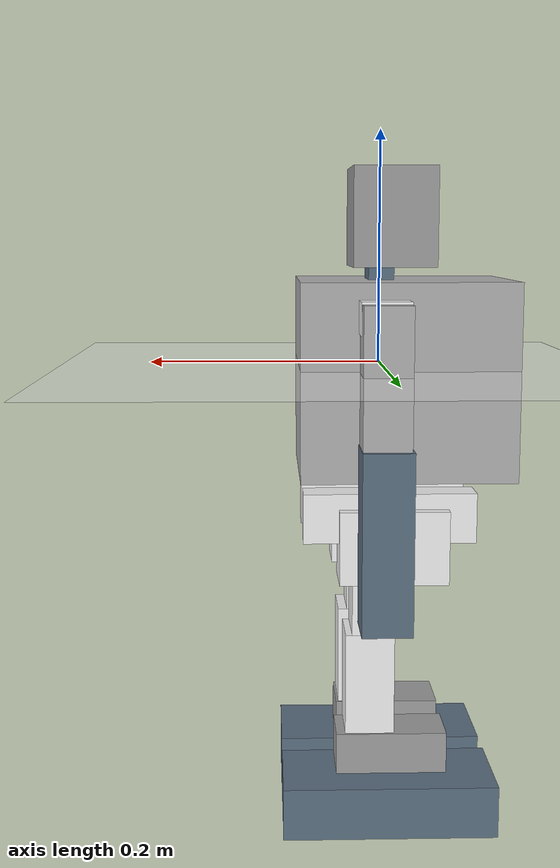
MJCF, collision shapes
<mujoco model="bez2 feetonly flat terrain scene">
  <include file="bez2_mjx_full_collision.xml"/>
    <compiler meshdir="meshes/" angle="radian"  assetdir="../assets/"/>

  <statistic center="0 0 0.1" extent="0.8" meansize="0.04"/>

  <visual>
    <headlight diffuse=".8 .8 .8" ambient=".2 .2 .2" specular="1 1 1"/>
    <rgba force="1 0 0 1"/>
    <global azimuth="120" elevation="-20"/>
    <map force="0.01"/>
    <scale forcewidth="0.3" contactwidth="0.5" contactheight="0.2"/>
    <quality shadowsize="8192"/>
  </visual>

  <asset>
    <texture type="skybox" builtin="gradient" rgb1="1 1 1" rgb2="1 1 1" width="800" height="800"/>
    <texture type="2d" name="groundplane" builtin="checker" mark="edge" rgb1="1 1 1" rgb2="1 1 1" markrgb="0 0 0"
      width="300" height="300"/>
    <material name="groundplane" texture="groundplane" texuniform="true" texrepeat="5 5" reflectance="0"/>
  </asset>

  <worldbody>
    <geom name="floor" size="0 0 0.01" type="plane" material="groundplane" contype="1" conaffinity="0" priority="1"
      friction="0.6" condim="3"/>
  </worldbody>

  <include file="sensor.xml"/>

  <keyframe>
      <key name="home"
      qpos="
        0.01006381 -0.00524273  0.3554218   0.99986568  0.00176925  0.01470567
 -0.0070161  -0.02879865  0.06594161  0.88049179 -1.53157813  0.6816981
 -0.07176462 -0.01780979  0.05104029  0.86242893 -1.540901    0.70639566
 -0.05184008

    "
    ctrl="

   -0.02879865  0.06594161  0.88049179 -1.53157813  0.6816981
 -0.07176462 -0.01780979  0.05104029  0.86242893 -1.540901    0.70639566
 -0.05184008
    "/>
"/>  </keyframe>
<!--      qpos="-->

<!--    ctrl="-->
<!--    qpos="-->
<!--    ctrl="-->
</mujoco>

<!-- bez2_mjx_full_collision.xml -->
<mujoco model="bez2">
    <compiler meshdir="meshes/" angle="radian"  assetdir="../assets/"/>
    <option iterations="3" ls_iterations="5" timestep=".002" integrator="Euler">
    <flag eulerdamp="disable"/>
  </option>
  <default>
      <mesh scale="0.001 0.001 0.001"/>
      <default class="humanoid">
          <geom condim="1"/>
        <default class="mx64">
            <position kp="12.5" ctrlrange="-3.141592 3.141592"  forcerange="-5 5" />
            <joint damping="0.66" armature="0.012" frictionloss="0.09" />
        </default>
		<default class="xm430">
            <position kp="21.1" ctrlrange="-3.141592 3.141592" forcerange="-5 5"/>
            <joint damping="1.084" armature="0.045" frictionloss="0.03"/>
        </default>
          <default class="visual">
        <geom type="mesh" density="0" group="2"  contype="0" conaffinity="0"/>
      </default>
      <default class="collision">
        <geom group="3" contype="1" conaffinity="1" />
      </default>
    </default>
</default>

  <asset>
    <mesh name="base_link" file="base_link.stl"/>
    <mesh name="left_hip_side_v5_1" file="left_hip_side_v5_1.stl"/>
    <mesh name="left_foot_v10_1" file="left_foot_v10_1.stl"/>
    <mesh name="left_shoulder_v5_1" file="left_shoulder_v5_1.stl"/>
    <mesh name="left_bicep_v6_1" file="left_bicep_v6_1.stl"/>
    <mesh name="left_forearm_v4_1" file="left_forearm_v4_1.stl"/>
    <mesh name="neck_v6_1" file="neck_v6_1.stl"/>
    <mesh name="head_v4_1" file="head_v4_1.stl"/>
    <mesh name="right_hip_side_v1_1" file="right_hip_side_v1_1.stl"/>
    <mesh name="right_ankle_v2_1" file="right_ankle_v2_1.stl"/>
    <mesh name="right_foot_v2_1" file="right_foot_v2_1.stl"/>
    <mesh name="right_shoulder_v1_1" file="right_shoulder_v1_1.stl"/>
    <mesh name="right_bicep_v2_1" file="right_bicep_v2_1.stl"/>
    <mesh name="right_forearm_v1_1" file="right_forearm_v1_1.stl"/>
    <mesh name="left_thigh_v1_1" file="left_thigh_v1_1.stl"/>
    <mesh name="right_thigh_v1_1" file="right_thigh_v1_1.stl"/>
    <mesh name="left_hip_front_v5_1" file="left_hip_front_v5_1.stl"/>
    <mesh name="left_calve_v5_1" file="left_calve_v5_1.stl"/>
    <mesh name="left_ankle_v7_1" file="left_ankle_v7_1.stl"/>
    <mesh name="right_hip_front_v5_1" file="right_hip_front_v5_1.stl"/>
    <mesh name="right_calve_v1_1" file="right_calve_v1_1.stl"/>
  </asset>

  <worldbody>
    <body name="torso" childclass="humanoid">
      <freejoint name="root" />
      <site name="imu" />
        <camera name="track" pos="0.759 -0.496 0.1" xyaxes="0.509 0.861 -0.000 -0.134 0.079 0.988" mode="trackcom"/>

      <inertial pos="-0.02024929347181477 0.00329389 -0.0267196" quat="0.727595 0.68359 0.0487527 -0.0305389" mass="1.44293"
                diaginertia="0.00978489 0.00806535 0.00665576"/>
      <geom class="visual" type="mesh" rgba="0.7 0.7 0.7 1" mesh="base_link"/>
       <geom  class="collision" size="0.091145 0.086075 0.083325" pos="-0.02 0 -0.011" type="box" rgba="0.7 0.7 0.7 1"/>

      <body name="neck" pos="0 0.00025 0.0725">
        <inertial pos="8.93697e-11 0.00124098 0.0120405" quat="0.707107 0.707107 0 0" mass="0.00424711"
                  diaginertia="2e-06 2e-06 1e-06"/>
         <geom  class="collision" size="0.010975 0.022515 0.019385" pos="0.00011 -1e-05 0.01937" type="box" rgba="0.364706 0.439216 0.509804 1"/>
          <geom class="visual" pos="0 -0.00025 -0.0725" quat="1 0 0 0" type="mesh" rgba="0.364706 0.439216 0.509804 1" mesh="neck_v6_1"/>
        <body name="head" pos="0 -0.0185 0.025">
          <inertial pos="-0.0025762 0.0189918 0.0330059" quat="0.968363 -0.00401205 0.248843 0.0182951" mass="0.264339"
                    diaginertia="0.000267836 0.000238997 0.000135166"/>
           <geom  class="collision" size="0.035555 0.04732 0.042165" pos="-0.00985 0.01921 0.02791" type="box" rgba="0.627451 0.627451 0.627451 1"/>

            <geom class="visual" pos="0 0.01825 -0.0975" quat="1 0 0 0" type="mesh" rgba="0.627451 0.627451 0.627451 1" mesh="head_v4_1"/>
          <site name="camera" pos="0.02 0.019 0.055" euler="0 0 0"/>
             <camera name="cam" pos="0.02 0.019 0.055" euler="1.57 -1.57 0" fovy="43.3" mode="fixed"
           />
        </body>
      </body>
      <site name="trunk" pos="-0.06 0 -0.09" />
      <body name="left_shoulder" pos="0.003 0.084 0.04475">
        <inertial pos="8.92269e-11 0.00784403 0" quat="0.5 0.5 0.5 0.5" mass="0.0105929" diaginertia="3e-06 3e-06 1e-06"/>
            <geom size="0.020525 0.01627 0.01355" pos="-2e-05 0.01594 -0.00024" type="box" rgba="0.960784 0.960784 0.964706 1"/>

          <geom class="visual" pos="-0.003 -0.084 -0.04475" quat="1 0 0 0" type="mesh" rgba="0.960784 0.960784 0.964706 1" mesh="left_shoulder_v5_1"/>
        <body name="left_bicep" pos="0.019 0.0303 0">
          <inertial pos="-0.0194205 0.000104779 -0.0605146" quat="0.692309 0.0113936 0.00585463 0.721487" mass="0.186364" diaginertia="0.000444025 0.000442243 3.47325e-05"/>
              <geom  class="collision" size="0.019935 0.019855 0.070825" pos="-0.01912 -0.0004 -0.05958" type="box" rgba="0.7 0.7 0.7 1"/>

            <geom class="visual" pos="-0.022 -0.1143 -0.04475" quat="1 0 0 0" type="mesh" rgba="0.7 0.7 0.7 1" mesh="left_bicep_v6_1"/>
          <body name="left_forearm" pos="-0.020403 0.018801 -0.119141">
            <inertial pos="0.000490444 -0.0197004 -0.0814475" mass="0.0598454" diaginertia="0.000124 0.000119 2.1e-05"/>
           <geom  class="collision" size="0.02109 0.024585 0.075675" pos="0.00052 -0.01971 -0.06132" type="box" rgba="0.364706 0.439216 0.509804 1"/>

              <geom class="visual" pos="-0.001597 -0.133101 0.074391" type="mesh" rgba="0.364706 0.439216 0.509804 1" mesh="left_forearm_v4_1"/>
          </body>
        </body>
      </body>
      <body name="left_hip_side" pos="0.016 0.04125 -0.1085">
        <inertial pos="-0.0176303 0 -0.00718842" quat="0.487846 0.511866 0.511866 0.487846" mass="0.0392957" diaginertia="9.2e-05 9.01923e-05 6.80767e-06"/>
        <joint  class="xm430" name="left_hip_yaw" pos="0 0 0" axis="0 0 -1"  />
<geom  class="visual" size="0.07458 0.016 0.021575" pos="-0.02258 0 -0.02145" type="box" rgba="0.960784 0.960784 0.964706 1"/>

          <geom class="visual" pos="-0.016 -0.04125 0.1085" quat="1 0 0 0" type="mesh" rgba="0.960784 0.960784 0.964706 1" mesh="left_hip_side_v5_1"/>
        <body name="left_hip_front" pos="-0.0707 0 -0.028">
          <inertial pos="0.0471916 0.000172982 -0.0174801" quat="0.456499 0.538085 0.517889 0.483595" mass="0.2722" diaginertia="0.000233099 0.000193073 0.000105828"/>
          <joint  class="mx64" name="left_hip_roll" pos="0 0 0" axis="1 0 0" />
     <geom  class="collision" size="0.047115 0.02425 0.03198" pos="0.04505 0.00374 -0.01736" type="box" rgba="0.960784 0.960784 0.964706 1"/>

            <geom class="visual" pos="0.0547 -0.04125 0.1365" quat="1 0 0 0" type="mesh" rgba="0.960784 0.960784 0.964706 1" mesh="left_hip_front_v5_1"/>
          <body name="left_thigh" pos="0.066269 0.0235 -0.036">
            <inertial pos="-3.48325e-07 -0.0289611 -0.0366193" mass="0.0289828" diaginertia="3.5e-05 2.1e-05 1.7e-05"/>
            <joint  class="mx64" name="left_hip_pitch" pos="0 0 0" axis="0 -1 0"  />
           <geom  class="collision" size="0.014515 0.02532 0.049775" pos="0.00014 -0.02319 -0.03621" type="box" rgba="0.960784 0.960784 0.964706 1"/>

              <geom class="visual" pos="-0.011569 -0.06475 0.1725" quat="1 0 0 0" type="mesh" rgba="0.960784 0.960784 0.964706 1" mesh="left_thigh_v1_1"/>
            <body name="left_calve" pos="0 0 -0.072">
              <inertial pos="-5.27217e-05 -0.0237668 -0.0239014" quat="0.998068 -0.0621374 0 0" mass="0.15898" diaginertia="0.000124 0.000108 4.3e-05"/>
              <joint  class="mx64" name="left_knee" pos="0 0 0" axis="0 -1 0"  />
                 <geom  class="collision" size="0.02122 0.02558 0.05825" pos="-0.00102 -0.02343 -0.0442" type="box" rgba="0.960784 0.960784 0.964706 1"/>

                <geom class="visual" pos="-0.011569 -0.06475 0.2445" type="mesh" rgba="0.960784 0.960784 0.964706 1" mesh="left_calve_v5_1"/>
              <body name="left_ankle" pos="0 0 -0.088">
                <inertial pos="-0.019088 -0.023327 -0.0185199" quat="0.538085 0.456499 0.483595 0.517889" mass="0.2722" diaginertia="0.000233099 0.000193073 0.000105828"/>
                <joint  class="mx64" name="left_ankle_pitch" pos="0 0 0" axis="0 -1 0"  />
                       <geom  class="collision" size="0.0481 0.02444 0.03192" pos="-0.02007 -0.01995 -0.01858" type="box" rgba="0.627451 0.627451 0.627451 1"/>

                  <geom class="visual" pos="-0.011569 -0.06475 0.3325" quat="1 0 0 0" type="mesh" rgba="0.627451 0.627451 0.627451 1" mesh="left_ankle_v7_1"/>
                <body name="left_foot" pos="-0.0663 -0.0235 -0.036">
                  <site name="left_foot"/>
                  <inertial pos="0.0531233 0.0131171 -0.0171875" quat="0.0416633 0.697462 0.0260306 0.714936" mass="0.0392927" diaginertia="0.000144264 0.000123855 2.58809e-05"/>
                  <joint  class="mx64" name="left_ankle_roll" pos="0 0 0" axis="1 0 0" />
            <geom  class="collision" size="0.092 0.045 0.02259" pos="0.04903 0.018 -0.00918" type="box" rgba="0.364706 0.439216 0.509804 1"/>

                    <geom class="visual" name="left_foot" pos="0.054731 -0.04125 0.3685" quat="1 0 0 0" type="mesh" rgba="0.364706 0.439216 0.509804 1" mesh="left_foot_v10_1"/>
                </body>
              </body>
            </body>
          </body>
        </body>
      </body>
      <body name="right_shoulder" pos="0.003 -0.084 0.04475">
        <inertial pos="8.95853e-11 -0.00784403 0" quat="0.5 0.5 0.5 0.5" mass="0.0105929" diaginertia="3e-06 3e-06 1e-06"/>
<geom  class="visual" size="0.02051 0.016625 0.012915" pos="1e-05 -0.0161 -6e-05" type="box" rgba="0.960784 0.960784 0.964706 1"/>

          <geom class="visual" pos="-0.003 0.084 -0.04475" quat="1 0 0 0" type="mesh" rgba="0.960784 0.960784 0.964706 1" mesh="right_shoulder_v1_1"/>
        <body name="right_bicep" pos="0.019 -0.0303 0">
          <inertial pos="-0.0190714 -0.00123171 -0.0605146" quat="0.751663 -0.00525377 0.0143766 0.659369" mass="0.186364" diaginertia="0.000444317 0.000443067 3.46163e-05"/>
     <geom  class="collision" size="0.02055 0.019855 0.07082" pos="-0.0185 -0.0016 -0.05957" type="box" rgba="0.7 0.7 0.7 1"/>

            <geom class="visual" pos="-0.022 0.1143 -0.04475" quat="1 0 0 0" type="mesh" rgba="0.7 0.7 0.7 1" mesh="right_bicep_v2_1"/>
          <body name="right_forearm" pos="-0.019597 -0.020801 -0.119141">
            <inertial pos="0.000490325 0.0197004 -0.0814475" mass="0.0598454" diaginertia="0.000124 0.000119 2.1e-05"/>
          <geom  class="collision" size="0.02104 0.02459 0.07575" pos="0.00057 0.01974 -0.06122" type="box" rgba="0.364706 0.439216 0.509804 1"/>

            <geom class="visual" pos="-0.002403 0.135101 0.074391" type="mesh" rgba="0.364706 0.439216 0.509804 1" mesh="right_forearm_v1_1"/>
          </body>
        </body>
      </body>
      <body name="right_hip_side" pos="0.016 -0.04125 -0.1085">
        <inertial pos="-0.0176303 0 -0.00718842" quat="0.487846 0.511866 0.511866 0.487846" mass="0.0392957" diaginertia="9.2e-05 9.01923e-05 6.80767e-06"/>
        <joint class="xm430" name="right_hip_yaw" pos="0 0 0" axis="0 0 1"  />
<geom  class="visual" size="0.0744 0.016 0.021375" pos="-0.02263 0 -0.02126" type="box" rgba="0.960784 0.960784 0.964706 1"/>

          <geom class="visual" pos="-0.016 0.04125 0.1085" quat="1 0 0 0" type="mesh" rgba="0.960784 0.960784 0.964706 1" mesh="right_hip_side_v1_1"/>
        <body name="right_hip_front" pos="-0.0707 0 -0.028">
          <inertial pos="0.0472122 -0.000172989 -0.0174801" quat="0.483595 0.517889 0.538085 0.456499" mass="0.2722" diaginertia="0.000233099 0.000193073 0.000105828"/>
          <joint  class="mx64" name="right_hip_roll" pos="0 0 0" axis="-1 0 0"  />
     <geom  class="collision" size="0.04858 0.02526 0.032095" pos="0.04588 -0.00299 -0.01759" type="box" rgba="0.960784 0.960784 0.964706 1"/>

            <geom class="visual" pos="0.0547 0.04125 0.1365" quat="1 0 0 0" type="mesh" rgba="0.960784 0.960784 0.964706 1" mesh="right_hip_front_v5_1"/>
          <body name="right_thigh" pos="0.0663 -0.0235 -0.036">
            <inertial pos="9.83252e-08 0.0289611 -0.0366193" mass="0.0289828" diaginertia="3.5e-05 2.1e-05 1.7e-05"/>
            <joint  class="mx64" name="right_hip_pitch" pos="0 0 0" axis="0 -1 0"  />
           <geom  class="collision" size="0.014515 0.02532 0.049775" pos="-0.00014 0.02319 -0.03621" type="box" rgba="0.960784 0.960784 0.964706 1"/>

              <geom class="visual" pos="-0.0116 0.06475 0.1725" type="mesh" rgba="0.960784 0.960784 0.964706 1" mesh="right_thigh_v1_1"/>
            <body name="right_calve" pos="0 0 -0.072">
              <inertial pos="5.24717e-05 0.0237668 -0.0239014" quat="0.998068 0.0621374 0 0" mass="0.15898" diaginertia="0.000124 0.000108 4.3e-05"/>
              <joint  class="mx64" name="right_knee" pos="0 0 0" axis="0 -1 0"  />
                 <geom  class="collision" size="0.02122 0.02558 0.05825" pos="0.00102 0.02343 -0.0442" type="box" rgba="0.960784 0.960784 0.964706 1"/>

                <geom class="visual" pos="-0.0116 0.06475 0.2445" quat="1 0 0 0" type="mesh" rgba="0.960784 0.960784 0.964706 1" mesh="right_calve_v1_1"/>
              <body name="right_ankle" pos="0 0 -0.088">
                <inertial pos="-0.0193325 0.0235572 -0.0181705" quat="0.530545 0.465974 0.453347 0.543936" mass="0.2722" diaginertia="0.000229026 0.00019101 0.000105965"/>
                <joint  class="mx64" name="right_ankle_pitch" pos="0 0 0" axis="0 -1 0"  />
               <geom  class="collision" size="0.04674 0.027825 0.032" pos="-0.02271 0.02339 -0.01857" type="box" rgba="0.627451 0.627451 0.627451 1"/>

                  <geom class="visual" pos="-0.0116 0.06475 0.3325" quat="1 0 0 0" type="mesh" rgba="0.627451 0.627451 0.627451 1" mesh="right_ankle_v2_1"/>
                <body name="right_foot" pos="-0.0663 0.0235 -0.036">
                  <site name="right_foot" />
                  <inertial pos="0.0531235 -0.0131171 -0.0171875" quat="-0.0416633 0.697462 -0.0260306 0.714936" mass="0.0392927" diaginertia="0.000144264 0.000123855 2.58809e-05"/>
                  <joint class="mx64" name="right_ankle_roll" pos="0 0 0" axis="-1 0 0"  />
              <geom  class="collision" size="0.092 0.045 0.02259" pos="0.04903 -0.018 -0.00918" type="box" rgba="0.364706 0.439216 0.509804 1"/>

                  <geom class="visual" name="right_foot" pos="0.0547 0.04125 0.3685" quat="1 0 0 0" type="mesh" rgba="0.364706 0.439216 0.509804 1" mesh="right_foot_v2_1"/>
                </body>
              </body>
            </body>
          </body>
        </body>
      </body>
    </body>
  </worldbody>

  <sensor>
        <gyro site="imu" name="gyro" />
        <velocimeter site="imu" name="local_linvel"/>
        <accelerometer site="imu" name="accelerometer"/>
        <framezaxis objtype="site" objname="imu" name="upvector"/>
        <framexaxis objtype="site" objname="imu" name="forwardvector"/>
        <framelinvel objtype="site" objname="imu" name="global_linvel"/>
        <frameangvel objtype="site" objname="imu" name="global_angvel"/>
        <framepos objtype="site" objname="imu" name="position"/>
        <framequat objtype="site" objname="imu" name="orientation"/>
        <framelinvel objtype="site" objname="left_foot" name="left_foot_global_linvel"/>
        <framelinvel objtype="site" objname="right_foot" name="right_foot_global_linvel"/>
        <framepos objtype="site" objname="left_foot" name="left_foot_pos"/>
        <framepos objtype="site" objname="right_foot" name="right_foot_pos"/>
    </sensor>
  <actuator>

        <position class="xm430" name="left_hip_yaw" joint="left_hip_yaw" ctrlrange="-1.309 0.524" />
        <position class="mx64" name="left_hip_roll" joint="left_hip_roll" ctrlrange="-0.785398 1.5708" />
        <position class="mx64" name="left_hip_pitch" joint="left_hip_pitch" ctrlrange="-0.785398 2.35619" />
        <position class="mx64" name="left_knee" joint="left_knee" ctrlrange=" -2.793 0" />
        <position class="mx64" name="left_ankle_pitch" joint="left_ankle_pitch" ctrlrange="-0.785398 1.5708" />
        <position class="mx64" name="left_ankle_roll" joint="left_ankle_roll" ctrlrange="-0.785398 0.785398" />

        <position class="xm430" name="right_hip_yaw" joint="right_hip_yaw" ctrlrange="-1.309 0.524" />
        <position class="mx64" name="right_hip_roll" joint="right_hip_roll" ctrlrange="-0.785398 1.5708" />
        <position class="mx64" name="right_hip_pitch" joint="right_hip_pitch" ctrlrange="-0.785398 2.35619" />
        <position class="mx64" name="right_knee" joint="right_knee" ctrlrange=" -2.793 0" />
        <position class="mx64" name="right_ankle_pitch" joint="right_ankle_pitch" ctrlrange="-0.785398 1.5708" />
        <position class="mx64" name="right_ankle_roll" joint="right_ankle_roll" ctrlrange="-0.785398 0.785398" />
    </actuator>
</mujoco>

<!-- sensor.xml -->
<mujoco>
  <sensor>
      <contact name="left_foot_floor_found" geom1="left_foot" geom2="floor" reduce="mindist" num="1" data="found"/>
    <contact name="right_foot_floor_found" geom1="right_foot" geom2="floor" reduce="mindist" num="1" data="found"/>
    <contact name="right_foot_left_foot_found" geom1="right_foot" geom2="left_foot" reduce="mindist" num="1" data="found"/>
  </sensor>
</mujoco>
